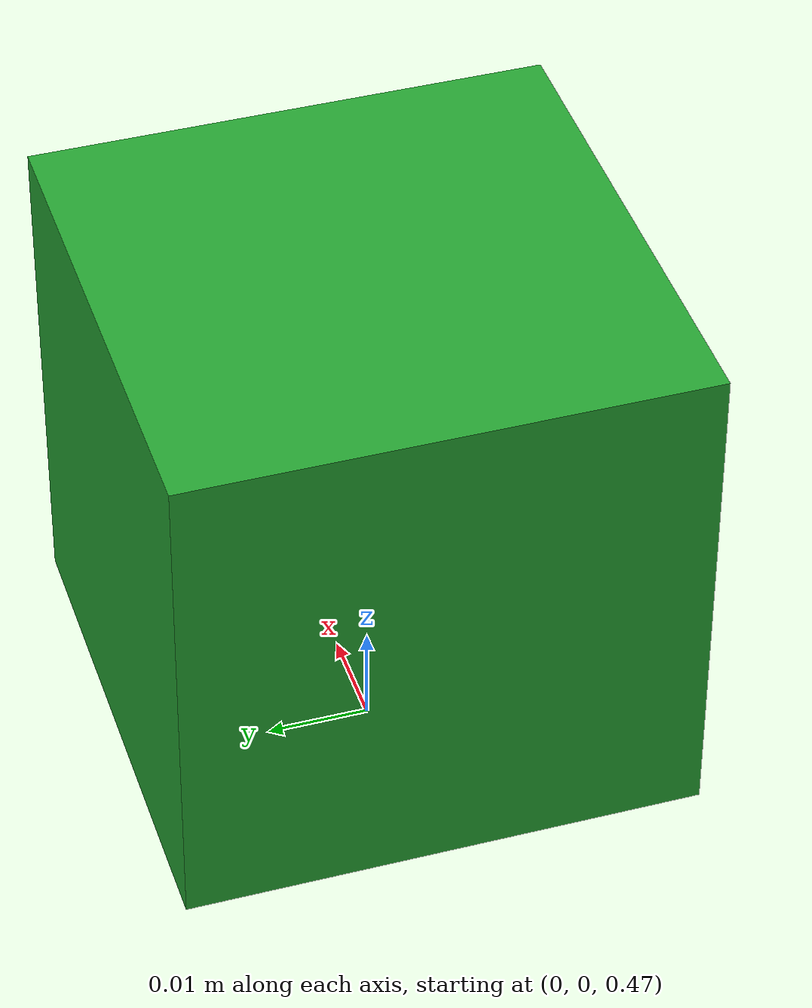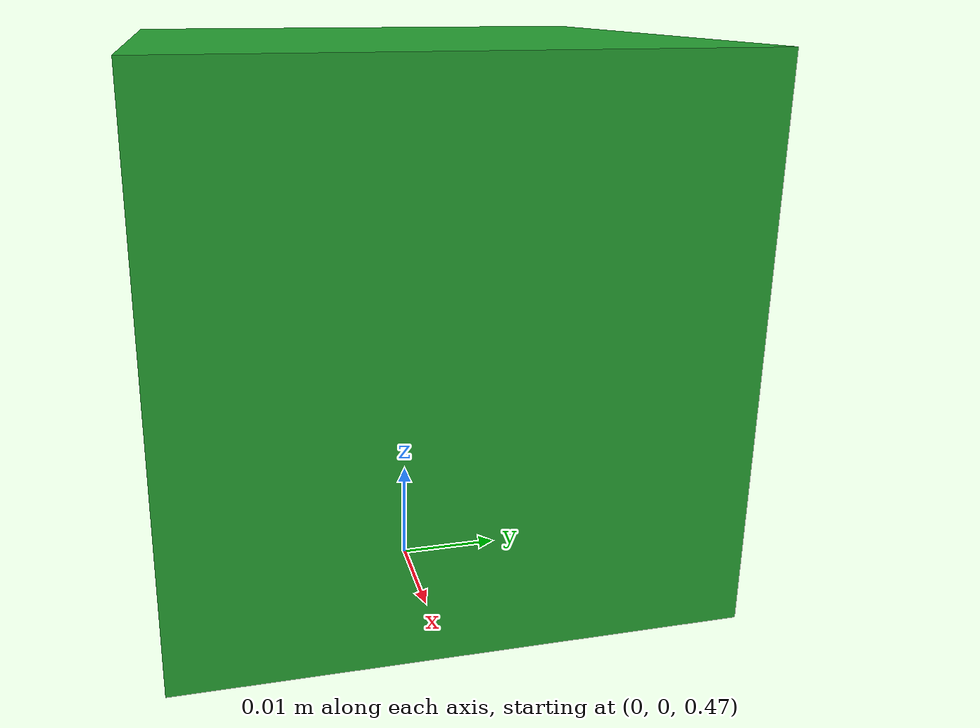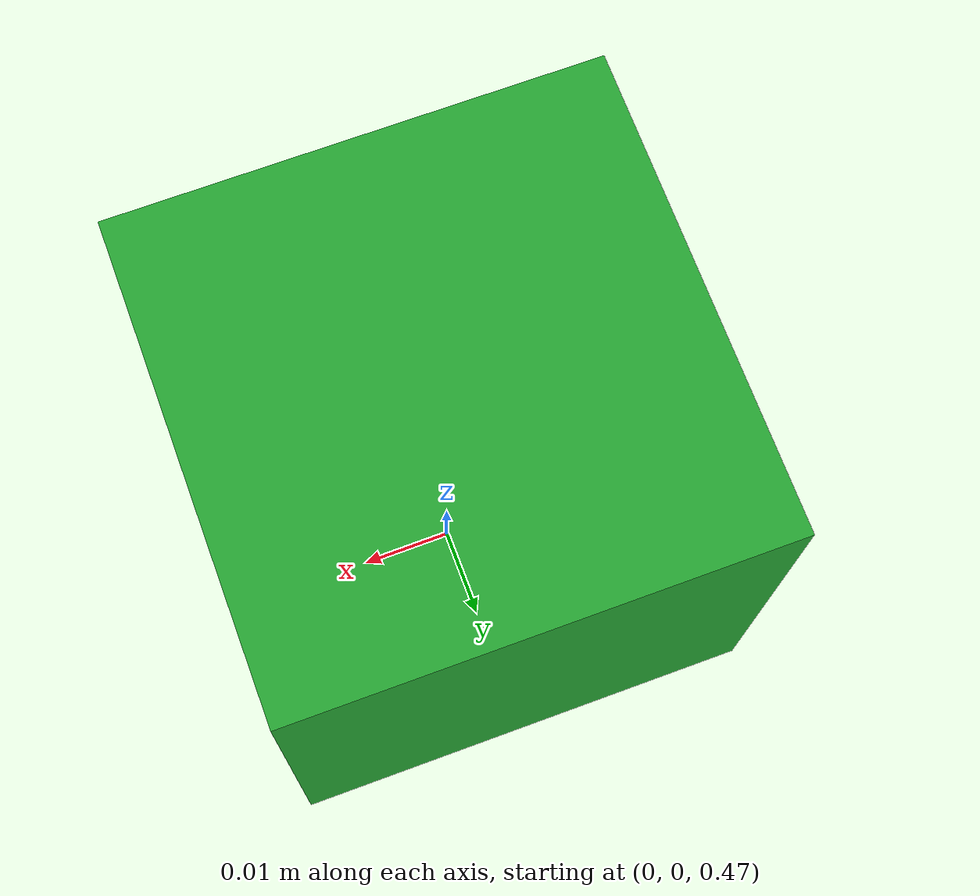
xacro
<?xml version="1.0"?>
<robot name="depth_bot" xmlns:xacro="http://ros.org/wiki/xacro">

  <link name="base_link"/>

  <joint name="depth_cam_joint" type="fixed">
    <parent link="base_link"/>
    <child link="depth_cam_link"/>
    <origin xyz="0 0 0.5" rpy="0 0 0"/>
  </joint>

  <link name="depth_cam_link">
    <visual>
      <geometry>
        <box size="0.05 0.05 0.05"/>
      </geometry>
      <material name="Gazebo/Green"/>
    </visual>
    <collision>
      <geometry>
        <box size="0.05 0.05 0.05"/>
      </geometry>
    </collision>
    <inertial>
      <mass value="0.1"/>
      <origin xyz="0 0 0" rpy="0 0 0"/>
      <inertia ixx="0.001" ixy="0" ixz="0"
               iyy="0.001" iyz="0"
               izz="0.001"/>
    </inertial>
  </link>

  <gazebo reference="depth_cam_link">
    <sensor name="depth_camera" type="depth">
      <always_on>true</always_on>
      <update_rate>30.0</update_rate>
      <visualize>true</visualize>
      <camera>
        <horizontal_fov>1.0472</horizontal_fov>
        <image>
          <width>640</width>
          <height>480</height>
          <format>R8G8B8</format>
        </image>
        <clip>
          <near>0.1</near>
          <far>5.0</far>
        </clip>
      </camera>
      <plugin name="gazebo_ros_depth_camera" filename="libgazebo_ros_camera.so">
        <camera_name>depth_camera</camera_name>
        <image_topic_name>image_raw</image_topic_name>
        <camera_info_topic_name>camera_info</camera_info_topic_name>
        <frame_name>depth_cam_link</frame_name>
        <point_cloud_topic_name>points</point_cloud_topic_name>
      </plugin>
    </sensor>
  </gazebo>

</robot>
